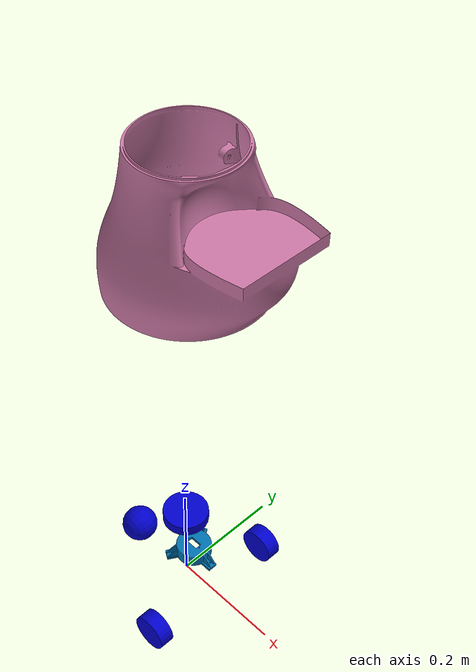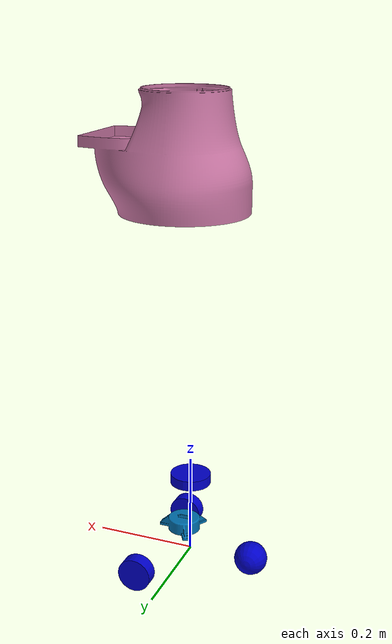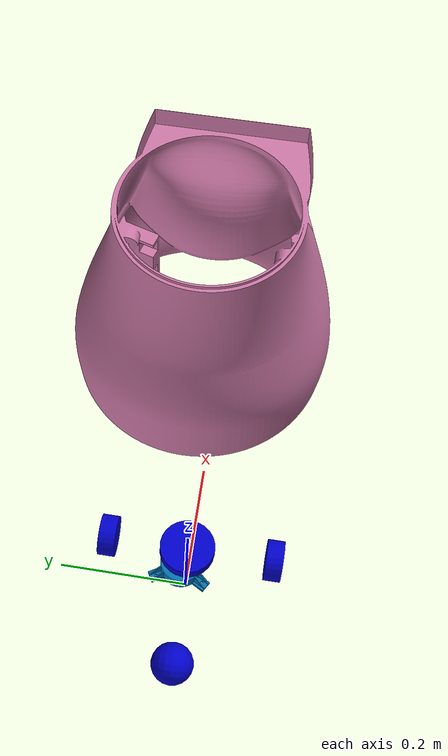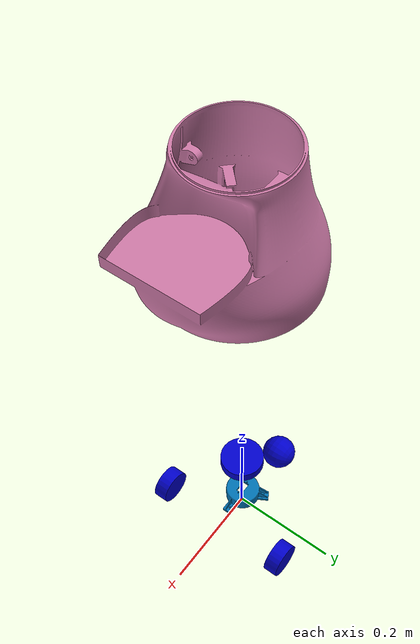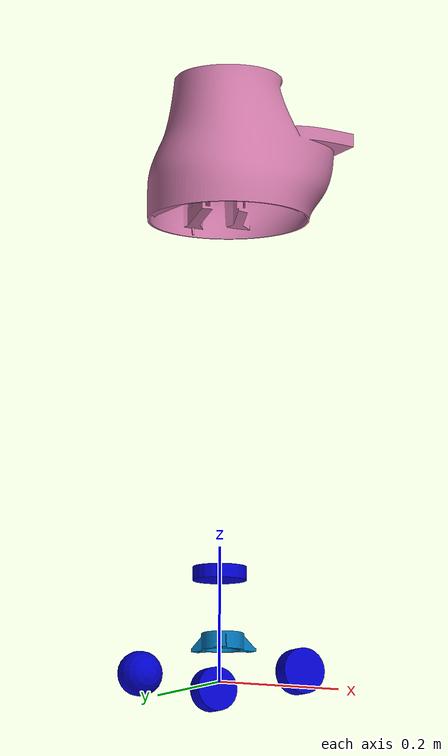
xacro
<?xml version="1.0"?>
<robot name="feetech_tray" xmlns:xacro="http://www.ros.org/wiki/xacro">

  <material name="blue">
    <color rgba="0 0 0.8 1"/>
  </material>

  <xacro:property name="description_pkg" value="package://urdf_tutorial" />

  <!-- Inertia Macros -->
  <xacro:macro name="box_inertia" params="m w h d">
    <inertial>
      <mass value="${m}"/>
      <inertia ixx="${(m/12) * (h*h + d*d)}" ixy="0.0" ixz="0.0" iyy="${(m/12) * (w*w + d*d)}" iyz="0.0" izz="${(m/12) * (w*w + h*h)}"/>
    </inertial>
  </xacro:macro>

  <xacro:macro name="cylinder_inertia" params="m r h">
    <inertial>
      <mass value="${m}"/>
      <inertia ixx="${(m/12) * (3*r*r + h*h)}" ixy="0.0" ixz="0.0" iyy="${(m/12) * (3*r*r + h*h)}" iyz="0.0" izz="${(m/2) * (r*r)}"/>
    </inertial>
  </xacro:macro>

  <xacro:macro name="sphere_inertia" params="m r">
    <inertial>
      <mass value="${m}"/>
      <inertia ixx="${(2/5) * m * (r*r)}" ixy="0.0" ixz="0.0" iyy="${(2/5) * m * (r*r)}" iyz="0.0" izz="${(2/5) * m * (r*r)}"/>
    </inertial>
  </xacro:macro>

  <link name="base_footprint"/>

  <joint name="base_joint" type="fixed">
    <parent link="base_footprint"/>
    <child link="base_link"/>
    <origin xyz="0 0 0.05" rpy="0 0 0"/>
  </joint>

  <!-- WHEELS -->
  <link name="left_wheel">
    <xacro:cylinder_inertia m="0.2" r="0.033" h="0.027"/>
    <visual>
      <origin rpy="1.570796 0 0" xyz="0 0 0" />
      <geometry>
        <cylinder length="0.027" radius="0.033" />
      </geometry>
      <material name="blue" />
    </visual>
    <collision>
      <origin rpy="1.570796 0 0" xyz="0 0 0" />
      <geometry>
        <cylinder length="0.027" radius="0.033" />
      </geometry>
    </collision>
  </link>

  <joint name="left_wheel_joint" type="continuous">
    <axis rpy="0 0 0" xyz="0 1 0"/>
    <parent link="base_link" />
    <child link="left_wheel" />
    <origin xyz="0.0605 0.1335 -0.04458" />
  </joint>

  <link name="right_wheel">
    <xacro:cylinder_inertia m="0.2" r="0.033" h="0.027"/>
    <visual>
      <origin rpy="1.570796 0 0" xyz="0 0 0" />
      <geometry>
        <cylinder length="0.027" radius="0.033" />
      </geometry>
      <material name="blue" />
    </visual>
    <collision>
      <origin rpy="1.570796 0 0" xyz="0 0 0" />
      <geometry>
        <cylinder length="0.027" radius="0.033" />
      </geometry>
    </collision>
  </link>

  <joint name="right_wheel_joint" type="continuous">
    <axis rpy="0 0 0" xyz="0 1 0"/>
    <parent link="base_link" />
    <child link="right_wheel" />
    <origin xyz="0.0605 -0.1335 -0.04458" />
  </joint>

  <link name="rear_wheel">
    <xacro:sphere_inertia m="0.1" r="0.033"/>
    <visual>
      <origin rpy="1.570796 0 0" xyz="0 0 0" />
      <geometry>
        <sphere radius="0.033" />
      </geometry>
      <material name="blue" />
    </visual>
    <collision>
      <origin rpy="1.570796 0 0" xyz="0 0 0" />
      <geometry>
        <sphere radius="0.033" />
      </geometry>
    </collision>
  </link>

  <joint name="rear_wheel_joint" type="fixed">
    <parent link="base_link" />
    <child link="rear_wheel" />
    <origin xyz="-0.13 0 -0.04458" />
  </joint>

  <!-- GAZEBO PHYSICS -->
  <gazebo reference="rear_wheel">
    <mu1>0.0</mu1>
    <mu2>0.0</mu2>
  </gazebo>

  <gazebo>
    <plugin name="diff_drive" filename="libgazebo_ros_diff_drive.so">
      <ros>
        <remapping>cmd_vel:=/cmd_vel</remapping>
        <remapping>odom:=/odom</remapping>
      </ros>
      <update_rate>50</update_rate>
      <left_joint>left_wheel_joint</left_joint>
      <right_joint>right_wheel_joint</right_joint>
      <wheel_separation>0.267</wheel_separation>
      <wheel_diameter>0.066</wheel_diameter>
      <max_wheel_acceleration>1.0</max_wheel_acceleration>
      <max_wheel_torque>20</max_wheel_torque>
      <command_topic>/cmd_vel</command_topic>
      <publish_odom>true</publish_odom>
      <publish_odom_tf>true</publish_odom_tf>
      <publish_wheel_tf>true</publish_wheel_tf>
      <odometry_topic>/odom</odometry_topic>
      <odometry_frame>odom</odometry_frame>
      <robot_base_frame>base_footprint</robot_base_frame>
    </plugin>
  </gazebo>

  <!-- BASE LINK -->
  <link name="base_link">
    <xacro:box_inertia m="5.0" w="0.2" h="0.3" d="0.1"/>
    <visual>
      <origin rpy="0 0 3.14" xyz="0 0 0"/>
      <geometry>
        <mesh filename="${description_pkg}/meshes/base_link.stl"/>
      </geometry>
    </visual>
    <collision>
      <geometry>
        <mesh filename="${description_pkg}/meshes/base_link.stl"/>
      </geometry>
    </collision>
  </link>

  <!-- LIDAR -->
  <link name="laser">
    <visual>
      <origin xyz="0 0 0" />
      <geometry>
        <cylinder length="0.02" radius="0.04" />
      </geometry>
      <material name="blue" />
    </visual>
  </link>

  <joint name="laser_joint" type="fixed">
    <parent link="base_link" />
    <child link="laser" />
    <origin xyz="0 0 0.11" rpy="0.0 0.0 0"/>
  </joint>

  <gazebo reference="laser">
    <sensor type="ray" name="rplidar_sensor">
      <pose>0 0 0 0 0 0</pose>
      <visualize>false</visualize>
      <update_rate>10</update_rate>
      <ray>
        <scan>
          <horizontal>
            <samples>360</samples>
            <resolution>1</resolution>
            <min_angle>-3.14159</min_angle>
            <max_angle>3.14159</max_angle>
          </horizontal>
        </scan>
        <range>
          <min>0.15</min>
          <max>10.0</max>
          <resolution>0.01</resolution>
        </range>
        <noise>
          <type>gaussian</type>
          <mean>0.0</mean>
          <stddev>0.01</stddev>
        </noise>
      </ray>
      <plugin name="gazebo_ros_ray_sensor" filename="libgazebo_ros_ray_sensor.so">
        <ros>
          <remapping>~/out:=/scan</remapping>
        </ros>
        <output_type>sensor_msgs/LaserScan</output_type>
        <frame_name>laser</frame_name>
      </plugin>
    </sensor>
  </gazebo>

  <!-- WAIST (updated tray mesh from teammate) -->
  <link name="updatedtray">
    <visual>
      <origin rpy="0 0 0" xyz="0 0 0"/>
      <geometry>
        <mesh filename="${description_pkg}/meshes/updatedtray.stl" scale="0.00001 0.00001 0.00001"/>
      </geometry>
    </visual>
  </link>

  <joint name="waist_joint" type="fixed">
    <parent link="base_link"/>
    <child link="updatedtray"/>
    <origin xyz="0.015 0 0.655" rpy="0 0 1.5708"/>
  </joint>

</robot>
